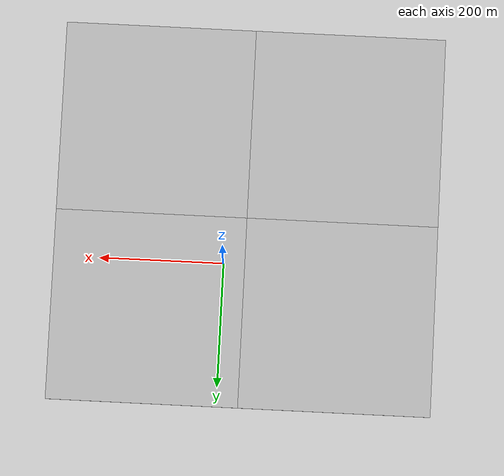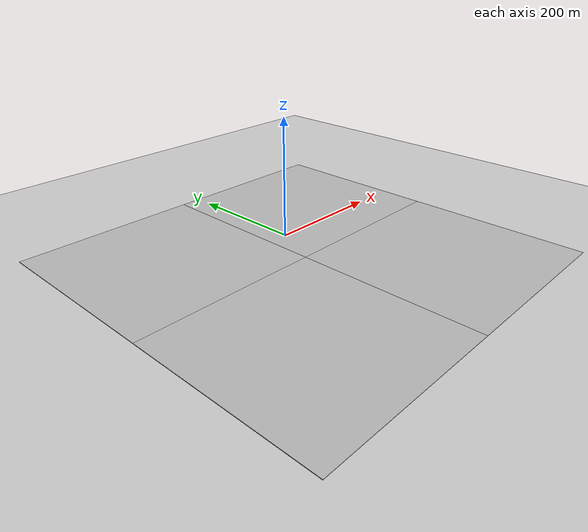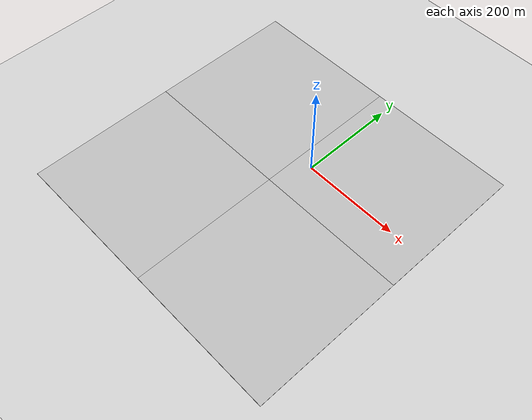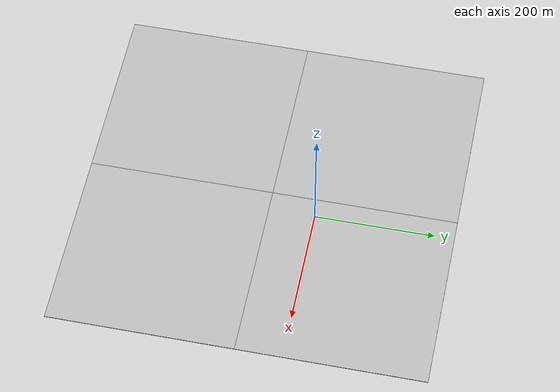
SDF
<sdf version="1.7">
 <world name="default">
  <light name="sun" type="directional">
   <pose>0 0 10 0 -0 0</pose>
   <diffuse>0.8 0.8 0.8 1</diffuse>
   <specular>0.2 0.2 0.2 1</specular>
   <attenuation>
    <range>1000</range>
    <constant>0.9</constant>
    <linear>0.01</linear>
    <quadratic>0.001</quadratic>
   </attenuation>
   <direction>-0.5 0.1 -0.9</direction>
   <spot><inner_angle>0</inner_angle><outer_angle>0</outer_angle><falloff>0</falloff></spot>
  </light>
  <model name="ground_plane">
   <static>1</static>
   <link name="link">
    <collision name="collision">
     <geometry><plane><normal>0 0 1</normal><size>100 100</size></plane></geometry>
     <surface><friction><ode><mu>100</mu><mu2>50</mu2></ode></friction></surface>
    </collision>
    <visual name="visual">
     <cast_shadows>0</cast_shadows>
     <geometry><plane><normal>0 0 1</normal><size>100 100</size></plane></geometry>
     <material>
      <script><uri>file://media/materials/scripts/gazebo.material</uri><name>Gazebo/Grey</name></script>
     </material>
    </visual>
   </link>
  </model>
  <gravity>0 0 -9.8</gravity>
  <magnetic_field>6e-06 2.3e-05 -4.2e-05</magnetic_field>
  <atmosphere type="adiabatic"/>
  <physics type="ode">
   <max_step_size>0.001</max_step_size>
   <real_time_factor>1</real_time_factor>
   <real_time_update_rate>1000</real_time_update_rate>
  </physics>
  <scene><ambient>0.4 0.4 0.4 1</ambient><background>0.7 0.7 0.7 1</background><shadows>1</shadows></scene>
  <spherical_coordinates>
   <surface_model>EARTH_WGS84</surface_model>
   <latitude_deg>0</latitude_deg>
   <longitude_deg>0</longitude_deg>
   <elevation>0</elevation>
   <heading_deg>0</heading_deg>
  </spherical_coordinates>
  <model name="map_satellite_36.0835594_140.07664_400_400">
   <static>1</static>
   <link name="link">
    <collision name="collision">
     <pose>0 0 -0.5 0 -0 0</pose>
     <geometry><box><size>617.733 617.733 1</size></box></geometry>
    </collision>
    <visual name="visual0_0">
     <pose>-154.433 154.433 -0.5 0 -0 1.5708</pose>
     <geometry><box><size>308.866 308.866 1</size></box></geometry>
     <material>
      <script>
       <uri>model://map_satellite_36.0835594_140.07664_400_400/materials/scripts</uri>
       <uri>model://map_satellite_36.0835594_140.07664_400_400/materials/textures</uri>
       <name>map_satellite_36.0835594_140.07664_400_400/0_0</name>
      </script>
     </material>
    </visual>
    <visual name="visual0_1">
     <pose>154.433 154.433 -0.5 0 -0 1.5708</pose>
     <geometry><box><size>308.866 308.866 1</size></box></geometry>
     <material>
      <script>
       <uri>model://map_satellite_36.0835594_140.07664_400_400/materials/scripts</uri>
       <uri>model://map_satellite_36.0835594_140.07664_400_400/materials/textures</uri>
       <name>map_satellite_36.0835594_140.07664_400_400/0_1</name>
      </script>
     </material>
    </visual>
    <visual name="visual1_0">
     <pose>-154.433 -154.433 -0.5 0 -0 1.5708</pose>
     <geometry><box><size>308.866 308.866 1</size></box></geometry>
     <material>
      <script>
       <uri>model://map_satellite_36.0835594_140.07664_400_400/materials/scripts</uri>
       <uri>model://map_satellite_36.0835594_140.07664_400_400/materials/textures</uri>
       <name>map_satellite_36.0835594_140.07664_400_400/1_0</name>
      </script>
     </material>
    </visual>
    <visual name="visual1_1">
     <pose>154.433 -154.433 -0.5 0 -0 1.5708</pose>
     <geometry><box><size>308.866 308.866 1</size></box></geometry>
     <material>
      <script>
       <uri>model://map_satellite_36.0835594_140.07664_400_400/materials/scripts</uri>
       <uri>model://map_satellite_36.0835594_140.07664_400_400/materials/textures</uri>
       <name>map_satellite_36.0835594_140.07664_400_400/1_1</name>
      </script>
     </material>
    </visual>
   </link>
   <pose>-34.2077 -77.1326 0 0 -0 0</pose>
  </model>
 </world>
</sdf>
